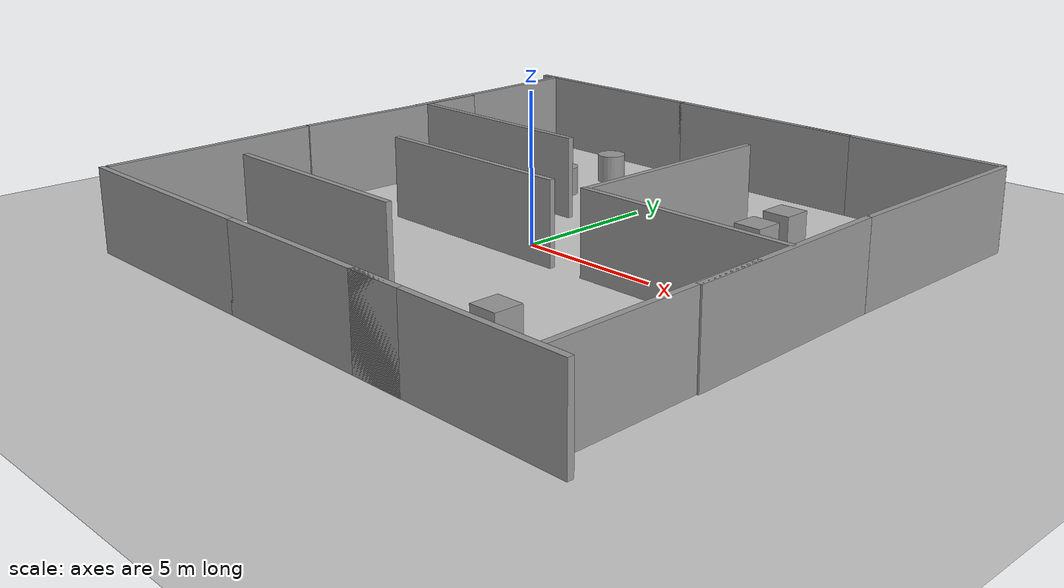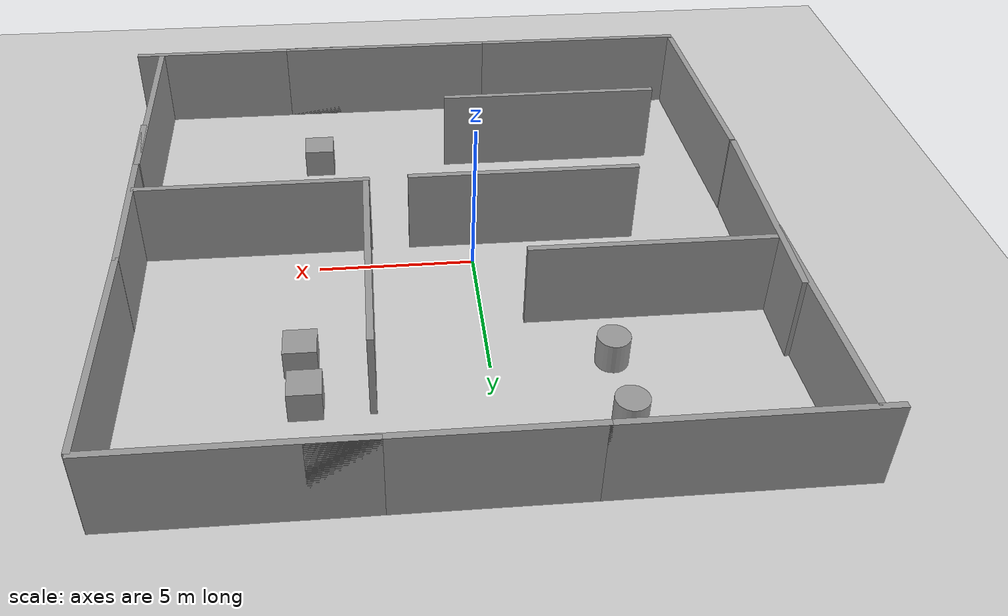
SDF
<sdf version="1.4">
 <world name="default">
  <light name="sun" type="directional">
   <pose>0 0 10 0 -0 0</pose>
   <diffuse>0.8 0.8 0.8 1</diffuse>
   <specular>0.2 0.2 0.2 1</specular>
   <attenuation>
    <range>1000</range>
    <constant>0.9</constant>
    <linear>0.01</linear>
    <quadratic>0.001</quadratic>
   </attenuation>
   <direction>-0.5 0.1 -0.9</direction>
  </light>
  <model name="ground_plane">
   <static>1</static>
   <link name="link">
    <collision name="collision">
     <geometry><plane><normal>0 0 1</normal><size>100 100</size></plane></geometry>
     <surface><friction><ode><mu>100</mu><mu2>50</mu2></ode></friction></surface>
    </collision>
    <visual name="visual">
     <cast_shadows>0</cast_shadows>
     <geometry><plane><normal>0 0 1</normal><size>100 100</size></plane></geometry>
     <material>
      <script><uri>file://media/materials/scripts/gazebo.material</uri><name>Gazebo/Grey</name></script>
     </material>
    </visual>
    <velocity_decay><linear>0</linear><angular>0</angular></velocity_decay>
   </link>
  </model>
  <physics type="ode">
   <max_step_size>0.001</max_step_size>
   <real_time_factor>1</real_time_factor>
   <real_time_update_rate>1000</real_time_update_rate>
   <gravity>0 0 -9.8</gravity>
  </physics>
  <scene><ambient>0.4 0.4 0.4 1</ambient><background>0.7 0.7 0.7 1</background><shadows>1</shadows></scene>
  <spherical_coordinates>
   <surface_model>EARTH_WGS84</surface_model>
   <latitude_deg>0</latitude_deg>
   <longitude_deg>0</longitude_deg>
   <elevation>0</elevation>
   <heading_deg>0</heading_deg>
  </spherical_coordinates>
  <model name="grey_wall">
   <static>1</static>
   <link name="link">
    <pose>0 0 1.4 0 -0 0</pose>
    <collision name="collision"><geometry><box><size>7.5 0.2 2.8</size></box></geometry></collision>
    <visual name="visual">
     <cast_shadows>0</cast_shadows>
     <geometry><box><size>7.5 0.2 2.8</size></box></geometry>
     <material>
      <script>
       <uri>model://grey_wall/materials/scripts</uri>
       <uri>model://grey_wall/materials/textures</uri>
       <name>vrc/grey_wall</name>
      </script>
     </material>
    </visual>
    <velocity_decay><linear>0</linear><angular>0</angular></velocity_decay>
   </link>
   <pose>-6 10 0 0 -0 0</pose>
  </model>
  <model name="grey_wall_0">
   <static>1</static>
   <link name="link">
    <pose>0 0 1.4 0 -0 0</pose>
    <collision name="collision"><geometry><box><size>7.5 0.2 2.8</size></box></geometry></collision>
    <visual name="visual">
     <cast_shadows>0</cast_shadows>
     <geometry><box><size>7.5 0.2 2.8</size></box></geometry>
     <material>
      <script>
       <uri>model://grey_wall/materials/scripts</uri>
       <uri>model://grey_wall/materials/textures</uri>
       <name>vrc/grey_wall</name>
      </script>
     </material>
    </visual>
    <velocity_decay><linear>0</linear><angular>0</angular></velocity_decay>
   </link>
   <pose>1.41393 10 0 0 -0 0</pose>
  </model>
  <model name="grey_wall_1">
   <static>1</static>
   <link name="link">
    <pose>0 0 1.4 0 -0 0</pose>
    <collision name="collision"><geometry><box><size>7.5 0.2 2.8</size></box></geometry></collision>
    <visual name="visual">
     <cast_shadows>0</cast_shadows>
     <geometry><box><size>7.5 0.2 2.8</size></box></geometry>
     <material>
      <script>
       <uri>model://grey_wall/materials/scripts</uri>
       <uri>model://grey_wall/materials/textures</uri>
       <name>vrc/grey_wall</name>
      </script>
     </material>
    </visual>
    <velocity_decay><linear>0</linear><angular>0</angular></velocity_decay>
   </link>
   <pose>7 10 0 0 -0 0</pose>
  </model>
  <model name="grey_wall_2">
   <static>1</static>
   <link name="link">
    <pose>0 0 1.4 0 -0 0</pose>
    <collision name="collision"><geometry><box><size>7.5 0.2 2.8</size></box></geometry></collision>
    <visual name="visual">
     <cast_shadows>0</cast_shadows>
     <geometry><box><size>7.5 0.2 2.8</size></box></geometry>
     <material>
      <script>
       <uri>model://grey_wall/materials/scripts</uri>
       <uri>model://grey_wall/materials/textures</uri>
       <name>vrc/grey_wall</name>
      </script>
     </material>
    </visual>
    <velocity_decay><linear>0</linear><angular>0</angular></velocity_decay>
   </link>
   <pose>-5 -10 0 0 -0 0</pose>
  </model>
  <model name="grey_wall_3">
   <static>1</static>
   <link name="link">
    <pose>0 0 1.4 0 -0 0</pose>
    <collision name="collision"><geometry><box><size>7.5 0.2 2.8</size></box></geometry></collision>
    <visual name="visual">
     <cast_shadows>0</cast_shadows>
     <geometry><box><size>7.5 0.2 2.8</size></box></geometry>
     <material>
      <script>
       <uri>model://grey_wall/materials/scripts</uri>
       <uri>model://grey_wall/materials/textures</uri>
       <name>vrc/grey_wall</name>
      </script>
     </material>
    </visual>
    <velocity_decay><linear>0</linear><angular>0</angular></velocity_decay>
   </link>
   <pose>2.40843 -10 0 0 -0 0</pose>
  </model>
  <model name="grey_wall_4">
   <static>1</static>
   <link name="link">
    <pose>0 0 1.4 0 -0 0</pose>
    <collision name="collision"><geometry><box><size>7.5 0.2 2.8</size></box></geometry></collision>
    <visual name="visual">
     <cast_shadows>0</cast_shadows>
     <geometry><box><size>7.5 0.2 2.8</size></box></geometry>
     <material>
      <script>
       <uri>model://grey_wall/materials/scripts</uri>
       <uri>model://grey_wall/materials/textures</uri>
       <name>vrc/grey_wall</name>
      </script>
     </material>
    </visual>
    <velocity_decay><linear>0</linear><angular>0</angular></velocity_decay>
   </link>
   <pose>8 -10 0 0 -0 0</pose>
  </model>
  <model name="grey_wall_9">
   <static>1</static>
   <link name="link">
    <pose>0 0 1.4 0 -0 0</pose>
    <collision name="collision"><geometry><box><size>7.5 0.2 2.8</size></box></geometry></collision>
    <visual name="visual">
     <cast_shadows>0</cast_shadows>
     <geometry><box><size>7.5 0.2 2.8</size></box></geometry>
     <material>
      <script>
       <uri>model://grey_wall/materials/scripts</uri>
       <uri>model://grey_wall/materials/textures</uri>
       <name>vrc/grey_wall</name>
      </script>
     </material>
    </visual>
    <velocity_decay><linear>0</linear><angular>0</angular></velocity_decay>
   </link>
   <pose>-8.80584 -6.09976 0 0 0 -1.53597</pose>
  </model>
  <model name="grey_wall_10">
   <static>1</static>
   <link name="link">
    <pose>0 0 1.4 0 -0 0</pose>
    <collision name="collision"><geometry><box><size>7.5 0.2 2.8</size></box></geometry></collision>
    <visual name="visual">
     <cast_shadows>0</cast_shadows>
     <geometry><box><size>7.5 0.2 2.8</size></box></geometry>
     <material>
      <script>
       <uri>model://grey_wall/materials/scripts</uri>
       <uri>model://grey_wall/materials/textures</uri>
       <name>vrc/grey_wall</name>
      </script>
     </material>
    </visual>
    <velocity_decay><linear>0</linear><angular>0</angular></velocity_decay>
   </link>
   <pose>-8.88179 1.44907 0 0 0 -1.58775</pose>
  </model>
  <model name="grey_wall_12">
   <static>1</static>
   <link name="link">
    <pose>0 0 1.4 0 -0 0</pose>
    <collision name="collision"><geometry><box><size>7.5 0.2 2.8</size></box></geometry></collision>
    <visual name="visual">
     <cast_shadows>0</cast_shadows>
     <geometry><box><size>7.5 0.2 2.8</size></box></geometry>
     <material>
      <script>
       <uri>model://grey_wall/materials/scripts</uri>
       <uri>model://grey_wall/materials/textures</uri>
       <name>vrc/grey_wall</name>
      </script>
     </material>
    </visual>
    <velocity_decay><linear>0</linear><angular>0</angular></velocity_decay>
   </link>
   <pose>-8.99285 6.22925 0 0 0 -1.54201</pose>
  </model>
  <model name="grey_wall_13">
   <static>1</static>
   <link name="link">
    <pose>0 0 1.4 0 -0 0</pose>
    <collision name="collision"><geometry><box><size>7.5 0.2 2.8</size></box></geometry></collision>
    <visual name="visual">
     <cast_shadows>0</cast_shadows>
     <geometry><box><size>7.5 0.2 2.8</size></box></geometry>
     <material>
      <script>
       <uri>model://grey_wall/materials/scripts</uri>
       <uri>model://grey_wall/materials/textures</uri>
       <name>vrc/grey_wall</name>
      </script>
     </material>
    </visual>
    <velocity_decay><linear>0</linear><angular>0</angular></velocity_decay>
   </link>
   <pose>10.6995 6.21751 0 0 0 -1.5736</pose>
  </model>
  <model name="grey_wall_14">
   <static>1</static>
   <link name="link">
    <pose>0 0 1.4 0 -0 0</pose>
    <collision name="collision"><geometry><box><size>7.5 0.2 2.8</size></box></geometry></collision>
    <visual name="visual">
     <cast_shadows>0</cast_shadows>
     <geometry><box><size>7.5 0.2 2.8</size></box></geometry>
     <material>
      <script>
       <uri>model://grey_wall/materials/scripts</uri>
       <uri>model://grey_wall/materials/textures</uri>
       <name>vrc/grey_wall</name>
      </script>
     </material>
    </visual>
    <velocity_decay><linear>0</linear><angular>0</angular></velocity_decay>
   </link>
   <pose>10.7666 -1.14635 0 0 0 -1.54892</pose>
  </model>
  <model name="grey_wall_15">
   <static>1</static>
   <link name="link">
    <pose>0 0 1.4 0 -0 0</pose>
    <collision name="collision"><geometry><box><size>7.5 0.2 2.8</size></box></geometry></collision>
    <visual name="visual">
     <cast_shadows>0</cast_shadows>
     <geometry><box><size>7.5 0.2 2.8</size></box></geometry>
     <material>
      <script>
       <uri>model://grey_wall/materials/scripts</uri>
       <uri>model://grey_wall/materials/textures</uri>
       <name>vrc/grey_wall</name>
      </script>
     </material>
    </visual>
    <velocity_decay><linear>0</linear><angular>0</angular></velocity_decay>
   </link>
   <pose>10.8039 -6.19934 0 0 0 -1.56055</pose>
  </model>
  <model name="grey_wall_16">
   <static>1</static>
   <link name="link">
    <pose>0 0 1.4 0 -0 0</pose>
    <collision name="collision"><geometry><box><size>7.5 0.2 2.8</size></box></geometry></collision>
    <visual name="visual">
     <cast_shadows>0</cast_shadows>
     <geometry><box><size>7.5 0.2 2.8</size></box></geometry>
     <material>
      <script>
       <uri>model://grey_wall/materials/scripts</uri>
       <uri>model://grey_wall/materials/textures</uri>
       <name>vrc/grey_wall</name>
      </script>
     </material>
    </visual>
    <velocity_decay><linear>0</linear><angular>0</angular></velocity_decay>
   </link>
   <pose>-5 3 0 0 -0 0</pose>
  </model>
  <model name="grey_wall_17">
   <static>1</static>
   <link name="link">
    <pose>0 0 1.4 0 -0 0</pose>
    <collision name="collision"><geometry><box><size>7.5 0.2 2.8</size></box></geometry></collision>
    <visual name="visual">
     <cast_shadows>0</cast_shadows>
     <geometry><box><size>7.5 0.2 2.8</size></box></geometry>
     <material>
      <script>
       <uri>model://grey_wall/materials/scripts</uri>
       <uri>model://grey_wall/materials/textures</uri>
       <name>vrc/grey_wall</name>
      </script>
     </material>
    </visual>
    <velocity_decay><linear>0</linear><angular>0</angular></velocity_decay>
   </link>
   <pose>-3.28702 -5.96434 0 0 -0 0</pose>
  </model>
  <model name="grey_wall_18">
   <static>1</static>
   <link name="link">
    <pose>0 0 1.4 0 -0 0</pose>
    <collision name="collision"><geometry><box><size>7.5 0.2 2.8</size></box></geometry></collision>
    <visual name="visual">
     <cast_shadows>0</cast_shadows>
     <geometry><box><size>7.5 0.2 2.8</size></box></geometry>
     <material>
      <script>
       <uri>model://grey_wall/materials/scripts</uri>
       <uri>model://grey_wall/materials/textures</uri>
       <name>vrc/grey_wall</name>
      </script>
     </material>
    </visual>
    <velocity_decay><linear>0</linear><angular>0</angular></velocity_decay>
   </link>
   <pose>7 -1 0 0 -0 0</pose>
  </model>
  <model name="unit_box_2">
   <pose>5 -6 0.5 0 -0 0</pose>
   <link name="link">
    <inertial>
     <mass>1</mass>
     <inertia><ixx>1</ixx><ixy>0</ixy><ixz>0</ixz><iyy>1</iyy><iyz>0</iyz><izz>1</izz></inertia>
    </inertial>
    <collision name="collision"><geometry><box><size>1 1 1</size></box></geometry></collision>
    <visual name="visual">
     <geometry><box><size>1 1 1</size></box></geometry>
     <material>
      <script><uri>file://media/materials/scripts/gazebo.material</uri><name>Gazebo/Grey</name></script>
     </material>
    </visual>
    <velocity_decay><linear>0</linear><angular>0</angular></velocity_decay>
   </link>
   <static>0</static>
  </model>
  <model name="unit_box_3">
   <pose>5.33441 6.17838 0.5 0 -0 0</pose>
   <link name="link">
    <inertial>
     <mass>1</mass>
     <inertia><ixx>1</ixx><ixy>0</ixy><ixz>0</ixz><iyy>1</iyy><iyz>0</iyz><izz>1</izz></inertia>
    </inertial>
    <collision name="collision"><geometry><box><size>1 1 1</size></box></geometry></collision>
    <visual name="visual">
     <geometry><box><size>1 1 1</size></box></geometry>
     <material>
      <script><uri>file://media/materials/scripts/gazebo.material</uri><name>Gazebo/Grey</name></script>
     </material>
    </visual>
    <velocity_decay><linear>0</linear><angular>0</angular></velocity_decay>
   </link>
   <static>0</static>
  </model>
  <model name="grey_wall_19">
   <static>1</static>
   <link name="link">
    <pose>0 0 1.4 0 -0 0</pose>
    <collision name="collision"><geometry><box><size>7.5 0.2 2.8</size></box></geometry></collision>
    <visual name="visual">
     <cast_shadows>0</cast_shadows>
     <geometry><box><size>7.5 0.2 2.8</size></box></geometry>
     <material>
      <script>
       <uri>model://grey_wall/materials/scripts</uri>
       <uri>model://grey_wall/materials/textures</uri>
       <name>vrc/grey_wall</name>
      </script>
     </material>
    </visual>
    <velocity_decay><linear>0</linear><angular>0</angular></velocity_decay>
   </link>
   <pose>3.41563 2.82072 0 0 0 -1.58033</pose>
  </model>
  <model name="grey_wall_20">
   <static>1</static>
   <link name="link">
    <pose>0 0 1.4 0 -0 0</pose>
    <collision name="collision"><geometry><box><size>7.5 0.2 2.8</size></box></geometry></collision>
    <visual name="visual">
     <cast_shadows>0</cast_shadows>
     <geometry><box><size>7.5 0.2 2.8</size></box></geometry>
     <material>
      <script>
       <uri>model://grey_wall/materials/scripts</uri>
       <uri>model://grey_wall/materials/textures</uri>
       <name>vrc/grey_wall</name>
      </script>
     </material>
    </visual>
    <velocity_decay><linear>0</linear><angular>0</angular></velocity_decay>
   </link>
   <pose>-1.72013 -1.05845 0 0 -0 0</pose>
  </model>
  <model name="unit_box_4">
   <pose>5.48672 4.49155 0.5 0 -0 0</pose>
   <link name="link">
    <inertial>
     <mass>1</mass>
     <inertia><ixx>1</ixx><ixy>0</ixy><ixz>0</ixz><iyy>1</iyy><iyz>0</iyz><izz>1</izz></inertia>
    </inertial>
    <collision name="collision"><geometry><box><size>1 1 1</size></box></geometry></collision>
    <visual name="visual">
     <geometry><box><size>1 1 1</size></box></geometry>
     <material>
      <script><uri>file://media/materials/scripts/gazebo.material</uri><name>Gazebo/Grey</name></script>
     </material>
    </visual>
    <velocity_decay><linear>0</linear><angular>0</angular></velocity_decay>
   </link>
   <static>0</static>
  </model>
  <model name="unit_cylinder_1">
   <pose>-3.57583 5 0.499998 1e-06 -0 0</pose>
   <link name="link">
    <inertial>
     <mass>1</mass>
     <inertia><ixx>1</ixx><ixy>0</ixy><ixz>0</ixz><iyy>1</iyy><iyz>0</iyz><izz>1</izz></inertia>
    </inertial>
    <collision name="collision">
     <geometry><cylinder><radius>0.5</radius><length>1</length></cylinder></geometry>
    </collision>
    <visual name="visual">
     <geometry><cylinder><radius>0.5</radius><length>1</length></cylinder></geometry>
     <material>
      <script><uri>file://media/materials/scripts/gazebo.material</uri><name>Gazebo/Grey</name></script>
     </material>
    </visual>
    <velocity_decay><linear>0</linear><angular>0</angular></velocity_decay>
   </link>
   <static>0</static>
  </model>
  <model name="unit_cylinder_2">
   <pose>-3.57362 7.49612 0.499992 -1e-06 -0 0</pose>
   <link name="link">
    <inertial>
     <mass>1</mass>
     <inertia><ixx>1</ixx><ixy>0</ixy><ixz>0</ixz><iyy>1</iyy><iyz>0</iyz><izz>1</izz></inertia>
    </inertial>
    <collision name="collision">
     <geometry><cylinder><radius>0.5</radius><length>1</length></cylinder></geometry>
    </collision>
    <visual name="visual">
     <geometry><cylinder><radius>0.5</radius><length>1</length></cylinder></geometry>
     <material>
      <script><uri>file://media/materials/scripts/gazebo.material</uri><name>Gazebo/Grey</name></script>
     </material>
    </visual>
    <velocity_decay><linear>0</linear><angular>0</angular></velocity_decay>
   </link>
   <static>0</static>
  </model>
 </world>
</sdf>
